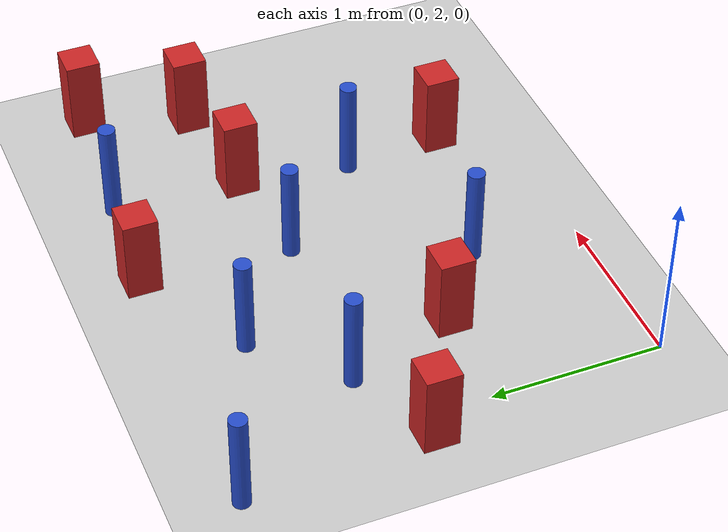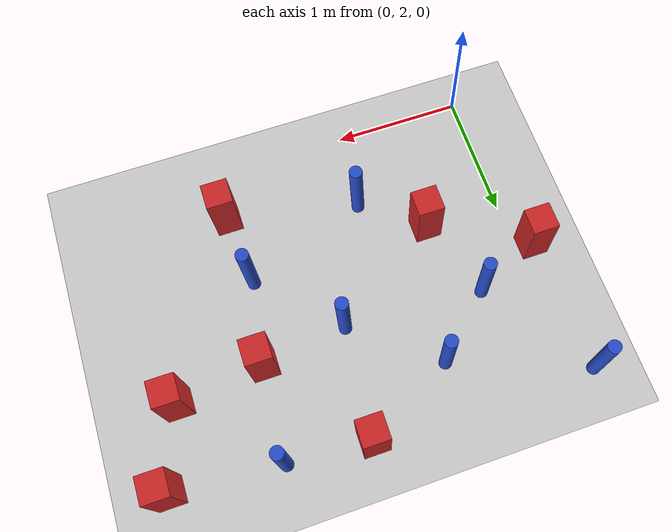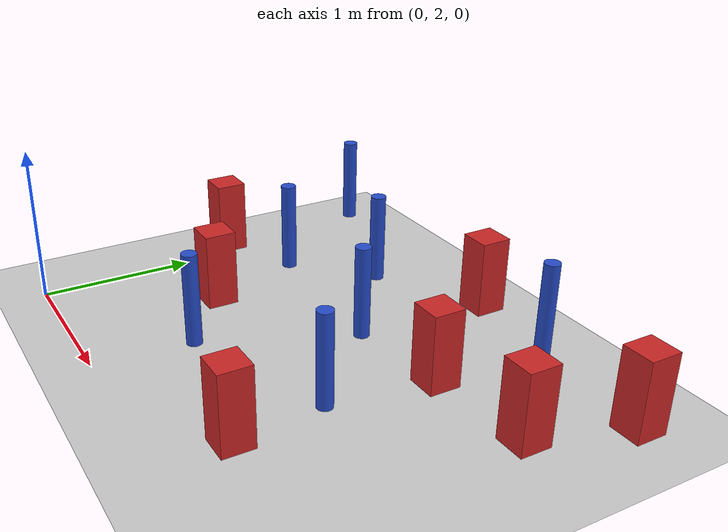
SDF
<sdf version="1.6">
 <world name="default">
  <model name="ground_plane">
   <static>1</static>
   <link name="link">
    <collision name="collision">
     <geometry><plane><normal>0 0 1</normal><size>100 100</size></plane></geometry>
     <surface><friction><ode><mu>100</mu><mu2>50</mu2></ode></friction></surface>
    </collision>
    <visual name="visual">
     <cast_shadows>0</cast_shadows>
     <geometry><plane><normal>0 0 1</normal><size>100 100</size></plane></geometry>
     <material>
      <ambient>1.0 1.0 1.0 1.0</ambient>
      <diffuse>0.8 0.8 0.8 1.0</diffuse>
      <specular>0.01 0.01 0.01 1.000000</specular>
     </material>
    </visual>
   </link>
  </model>
  <model name="pole_obstacle0">
   <static>true</static>
   <pose>2.01684290447 2.99197757127 -9.47619616065e-06 5.49618799738e-07 2.36310414047e-07 -1.55090534808e-07</pose>
   <link name="link">
    <pose>0 0 0.3 0 -0 0</pose>
    <inertial>
     <mass>1</mass>
     <inertia><ixx>0.145833</ixx><ixy>0</ixy><ixz>0</ixz><iyy>0.145833</iyy><iyz>0</iyz><izz>0.125</izz></inertia>
    </inertial>
    <collision name="collision">
     <geometry><cylinder><radius>0.05</radius><length>.6</length></cylinder></geometry>
    </collision>
    <visual name="visual">
     <geometry><cylinder><radius>0.05</radius><length>.6</length></cylinder></geometry>
     <material>
      <script><name>Gazebo/Blue</name><uri>file://media/materials/scripts/gazebo.material</uri></script>
     </material>
    </visual>
   </link>
  </model>
  <model name="square_post_obstacle21">
   <static>true</static>
   <pose>2.07038140015 2.41308263404 -6.11067671241e-07 -5.50515727128e-06 -8.79689657224e-07 2.37013304536e-05</pose>
   <link name="link">
    <pose>0 0 0.25 0 -0 0</pose>
    <inertial>
     <mass>100</mass>
     <inertia>
      <ixx>0.166667</ixx>
      <ixy>0</ixy>
      <ixz>0</ixz>
      <iyy>0.166667</iyy>
      <iyz>0</iyz>
      <izz>0.166667</izz>
     </inertia>
    </inertial>
    <collision name="collision"><geometry><box><size>.2 .2 .5</size></box></geometry></collision>
    <visual name="visual">
     <geometry><box><size>.2 .2 .5</size></box></geometry>
     <material>
      <script><name>Gazebo/Red</name><uri>file://media/materials/scripts/gazebo.material</uri></script>
     </material>
    </visual>
   </link>
  </model>
  <model name="square_post_obstacle24">
   <static>true</static>
   <pose>2.78826813013 3.72345648969 -6.11067671241e-07 -5.50515727128e-06 -8.79689657224e-07 2.37013304536e-05</pose>
   <link name="link">
    <pose>0 0 0.25 0 -0 0</pose>
    <inertial>
     <mass>100</mass>
     <inertia>
      <ixx>0.166667</ixx>
      <ixy>0</ixy>
      <ixz>0</ixz>
      <iyy>0.166667</iyy>
      <iyz>0</iyz>
      <izz>0.166667</izz>
     </inertia>
    </inertial>
    <collision name="collision"><geometry><box><size>.2 .2 .5</size></box></geometry></collision>
    <visual name="visual">
     <geometry><box><size>.2 .2 .5</size></box></geometry>
     <material>
      <script><name>Gazebo/Red</name><uri>file://media/materials/scripts/gazebo.material</uri></script>
     </material>
    </visual>
   </link>
  </model>
  <model name="pole_obstacle40">
   <static>true</static>
   <pose>-0.182909817355 4.45832482856 -9.47619616065e-06 5.49618799738e-07 2.36310414064e-07 -1.55090534799e-07</pose>
   <link name="link">
    <pose>0 0 0.3 0 -0 0</pose>
    <inertial>
     <mass>1</mass>
     <inertia><ixx>0.145833</ixx><ixy>0</ixy><ixz>0</ixz><iyy>0.145833</iyy><iyz>0</iyz><izz>0.125</izz></inertia>
    </inertial>
    <collision name="collision">
     <geometry><cylinder><radius>0.05</radius><length>.6</length></cylinder></geometry>
    </collision>
    <visual name="visual">
     <geometry><cylinder><radius>0.05</radius><length>.6</length></cylinder></geometry>
     <material>
      <script><name>Gazebo/Blue</name><uri>file://media/materials/scripts/gazebo.material</uri></script>
     </material>
    </visual>
   </link>
  </model>
  <model name="pole_obstacle52">
   <static>true</static>
   <pose>2.16601597922 4.38896975108 -9.47619616065e-06 5.49618799738e-07 2.3631041406e-07 -1.55090534801e-07</pose>
   <link name="link">
    <pose>0 0 0.3 0 -0 0</pose>
    <inertial>
     <mass>1</mass>
     <inertia><ixx>0.145833</ixx><ixy>0</ixy><ixz>0</ixz><iyy>0.145833</iyy><iyz>0</iyz><izz>0.125</izz></inertia>
    </inertial>
    <collision name="collision">
     <geometry><cylinder><radius>0.05</radius><length>.6</length></cylinder></geometry>
    </collision>
    <visual name="visual">
     <geometry><cylinder><radius>0.05</radius><length>.6</length></cylinder></geometry>
     <material>
      <script><name>Gazebo/Blue</name><uri>file://media/materials/scripts/gazebo.material</uri></script>
     </material>
    </visual>
   </link>
  </model>
  <model name="pole_obstacle82">
   <static>true</static>
   <pose>1.46217024665 3.56431129272 -9.47619616065e-06 5.49618799737e-07 2.36310414062e-07 -1.55090534798e-07</pose>
   <link name="link">
    <pose>0 0 0.3 0 -0 0</pose>
    <inertial>
     <mass>1</mass>
     <inertia><ixx>0.145833</ixx><ixy>0</ixy><ixz>0</ixz><iyy>0.145833</iyy><iyz>0</iyz><izz>0.125</izz></inertia>
    </inertial>
    <collision name="collision">
     <geometry><cylinder><radius>0.05</radius><length>.6</length></cylinder></geometry>
    </collision>
    <visual name="visual">
     <geometry><cylinder><radius>0.05</radius><length>.6</length></cylinder></geometry>
     <material>
      <script><name>Gazebo/Blue</name><uri>file://media/materials/scripts/gazebo.material</uri></script>
     </material>
    </visual>
   </link>
  </model>
  <model name="pole_obstacle101">
   <static>true</static>
   <pose>1.05146225618 2.63058908346 -9.47619616065e-06 5.49618799737e-07 2.36310414062e-07 -1.55090534798e-07</pose>
   <link name="link">
    <pose>0 0 0.3 0 -0 0</pose>
    <inertial>
     <mass>1</mass>
     <inertia><ixx>0.145833</ixx><ixy>0</ixy><ixz>0</ixz><iyy>0.145833</iyy><iyz>0</iyz><izz>0.125</izz></inertia>
    </inertial>
    <collision name="collision">
     <geometry><cylinder><radius>0.05</radius><length>.6</length></cylinder></geometry>
    </collision>
    <visual name="visual">
     <geometry><cylinder><radius>0.05</radius><length>.6</length></cylinder></geometry>
     <material>
      <script><name>Gazebo/Blue</name><uri>file://media/materials/scripts/gazebo.material</uri></script>
     </material>
    </visual>
   </link>
  </model>
  <model name="pole_obstacle113">
   <static>true</static>
   <pose>0.84218929867 4.06209744897 -9.47619616065e-06 5.49618799737e-07 2.36310414065e-07 -1.55090534796e-07</pose>
   <link name="link">
    <pose>0 0 0.3 0 -0 0</pose>
    <inertial>
     <mass>1</mass>
     <inertia><ixx>0.145833</ixx><ixy>0</ixy><ixz>0</ixz><iyy>0.145833</iyy><iyz>0</iyz><izz>0.125</izz></inertia>
    </inertial>
    <collision name="collision">
     <geometry><cylinder><radius>0.05</radius><length>.6</length></cylinder></geometry>
    </collision>
    <visual name="visual">
     <geometry><cylinder><radius>0.05</radius><length>.6</length></cylinder></geometry>
     <material>
      <script><name>Gazebo/Blue</name><uri>file://media/materials/scripts/gazebo.material</uri></script>
     </material>
    </visual>
   </link>
  </model>
  <model name="square_post_obstacle100">
   <static>true</static>
   <pose>2.99437277476 4.31176931934 -6.11067671241e-07 -5.50515727128e-06 -8.79689657224e-07 2.37013304536e-05</pose>
   <link name="link">
    <pose>0 0 0.25 0 -0 0</pose>
    <inertial>
     <mass>100</mass>
     <inertia>
      <ixx>0.166667</ixx>
      <ixy>0</ixy>
      <ixz>0</ixz>
      <iyy>0.166667</iyy>
      <iyz>0</iyz>
      <izz>0.166667</izz>
     </inertia>
    </inertial>
    <collision name="collision"><geometry><box><size>.2 .2 .5</size></box></geometry></collision>
    <visual name="visual">
     <geometry><box><size>.2 .2 .5</size></box></geometry>
     <material>
      <script><name>Gazebo/Red</name><uri>file://media/materials/scripts/gazebo.material</uri></script>
     </material>
    </visual>
   </link>
  </model>
  <model name="square_post_obstacle135">
   <static>true</static>
   <pose>2.1214784605 3.64706732813 -6.11067671241e-07 -5.50515727128e-06 -8.79689657224e-07 2.37013304536e-05</pose>
   <link name="link">
    <pose>0 0 0.25 0 -0 0</pose>
    <inertial>
     <mass>100</mass>
     <inertia>
      <ixx>0.166667</ixx>
      <ixy>0</ixy>
      <ixz>0</ixz>
      <iyy>0.166667</iyy>
      <iyz>0</iyz>
      <izz>0.166667</izz>
     </inertia>
    </inertial>
    <collision name="collision"><geometry><box><size>.2 .2 .5</size></box></geometry></collision>
    <visual name="visual">
     <geometry><box><size>.2 .2 .5</size></box></geometry>
     <material>
      <script><name>Gazebo/Red</name><uri>file://media/materials/scripts/gazebo.material</uri></script>
     </material>
    </visual>
   </link>
  </model>
  <model name="square_post_obstacle156">
   <static>true</static>
   <pose>-0.130217988659 3.38574543311 -6.11067671241e-07 -5.50515727128e-06 -8.79689657224e-07 2.37013304536e-05</pose>
   <link name="link">
    <pose>0 0 0.25 0 -0 0</pose>
    <inertial>
     <mass>100</mass>
     <inertia>
      <ixx>0.166667</ixx>
      <ixy>0</ixy>
      <ixz>0</ixz>
      <iyy>0.166667</iyy>
      <iyz>0</iyz>
      <izz>0.166667</izz>
     </inertia>
    </inertial>
    <collision name="collision"><geometry><box><size>.2 .2 .5</size></box></geometry></collision>
    <visual name="visual">
     <geometry><box><size>.2 .2 .5</size></box></geometry>
     <material>
      <script><name>Gazebo/Red</name><uri>file://media/materials/scripts/gazebo.material</uri></script>
     </material>
    </visual>
   </link>
  </model>
  <model name="square_post_obstacle180">
   <static>true</static>
   <pose>1.53198920509 4.43292054701 -6.11067671241e-07 -5.50515727128e-06 -8.79689657224e-07 2.37013304536e-05</pose>
   <link name="link">
    <pose>0 0 0.25 0 -0 0</pose>
    <inertial>
     <mass>100</mass>
     <inertia>
      <ixx>0.166667</ixx>
      <ixy>0</ixy>
      <ixz>0</ixz>
      <iyy>0.166667</iyy>
      <iyz>0</iyz>
      <izz>0.166667</izz>
     </inertia>
    </inertial>
    <collision name="collision"><geometry><box><size>.2 .2 .5</size></box></geometry></collision>
    <visual name="visual">
     <geometry><box><size>.2 .2 .5</size></box></geometry>
     <material>
      <script><name>Gazebo/Red</name><uri>file://media/materials/scripts/gazebo.material</uri></script>
     </material>
    </visual>
   </link>
  </model>
  <model name="square_post_obstacle189">
   <static>true</static>
   <pose>0.608594290511 2.97678812141 -6.11067671241e-07 -5.50515727128e-06 -8.79689657224e-07 2.37013304536e-05</pose>
   <link name="link">
    <pose>0 0 0.25 0 -0 0</pose>
    <inertial>
     <mass>100</mass>
     <inertia>
      <ixx>0.166667</ixx>
      <ixy>0</ixy>
      <ixz>0</ixz>
      <iyy>0.166667</iyy>
      <iyz>0</iyz>
      <izz>0.166667</izz>
     </inertia>
    </inertial>
    <collision name="collision"><geometry><box><size>.2 .2 .5</size></box></geometry></collision>
    <visual name="visual">
     <geometry><box><size>.2 .2 .5</size></box></geometry>
     <material>
      <script><name>Gazebo/Red</name><uri>file://media/materials/scripts/gazebo.material</uri></script>
     </material>
    </visual>
   </link>
  </model>
  <model name="pole_obstacle194">
   <static>true</static>
   <pose>0.383105757302 3.62714165424 -9.47619616065e-06 5.49618799738e-07 2.36310414065e-07 -1.55090534798e-07</pose>
   <link name="link">
    <pose>0 0 0.3 0 -0 0</pose>
    <inertial>
     <mass>1</mass>
     <inertia><ixx>0.145833</ixx><ixy>0</ixy><ixz>0</ixz><iyy>0.145833</iyy><iyz>0</iyz><izz>0.125</izz></inertia>
    </inertial>
    <collision name="collision">
     <geometry><cylinder><radius>0.05</radius><length>.6</length></cylinder></geometry>
    </collision>
    <visual name="visual">
     <geometry><cylinder><radius>0.05</radius><length>.6</length></cylinder></geometry>
     <material>
      <script><name>Gazebo/Blue</name><uri>file://media/materials/scripts/gazebo.material</uri></script>
     </material>
    </visual>
   </link>
  </model>
 </world>
</sdf>
